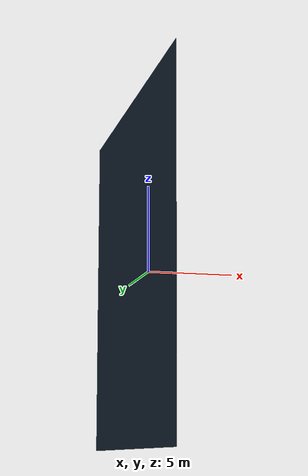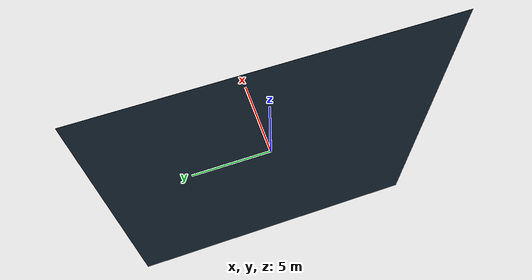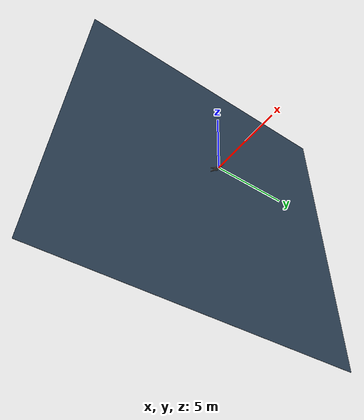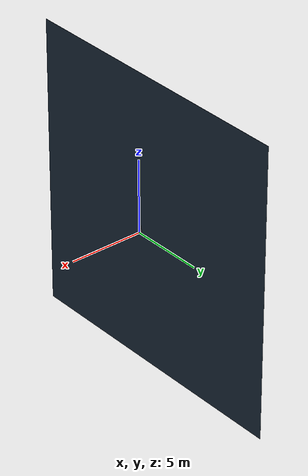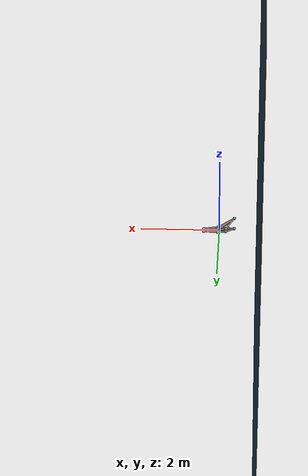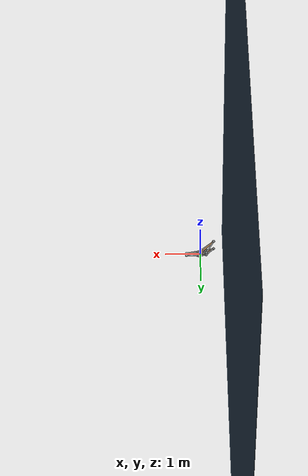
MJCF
<mujoco model="dbar"> <include file="./common/visual.xml"/>  <include file="./common/skybox.xml"/> <include file="./common/materials.xml"/>

    <!-- C:\Users\Vishala\Documents\MS_THO\PhD_Fall_2019\Study\RL\Project\common -->

    <option timestep="0.002" iterations="50" solver="PGS" tolerance="1e-10" gravity = "0 0 0" viscosity="0"/>
    <size njmax="100" nconmax="20" nstack="4000"/>

    <visual>
    </visual>

    <default>
        <motor ctrllimited="false" ctrlrange="-1 1"/>
		<tendon stiffness="0.9" damping=".001" range="0.1 0.8"/>
		<geom size="0.02" mass="1"/>
		<site size="0.04"/>
       <camera pos="0 0 10"/>
    </default>
    <asset><texture type="skybox" builtin="gradient" width="100" height="100" rgb1=".4 .6 .8" rgb2="0 0 0"/><texture name="texgeom" type="cube" builtin="flat" mark="cross" width="127" height="1278" rgb1="0.8 0.6 0.4" rgb2="0.8 0.6 0.4" markrgb="1 1 1" random="0.01"/><texture name="texplane" type="2d" builtin="checker" rgb1=".2 .3 .4" rgb2=".1 0.15 0.2" width="100" height="100"/><material name="MatPlane" reflectance="0.5" texture="texplane" texrepeat="1 1" texuniform="true"/><material name="geom" texture="texgeom" texuniform="true"/></asset>

    <worldbody>
        <geom name="floor" pos="-1 0 0" euler="0 90 0" size="10 10 0.125" type="plane" material="MatPlane" condim="3"/>
        <light directional="true" diffuse=".8 .8 .8" specular=".2 .2 .2" pos="0 0 5" dir="0 0 -1"/>
        <site name="s0" pos="0 0 0"/>
	<body>
      <geom name="bar1" type="capsule" fromto="-0.3800046 -0.3306 -0.15456 0.04222 0.0367 -0.0350" material="self"/>
	  <site name="b2" pos="-0.3800046 -0.3306 -0.15456"/>
      <site name="b4" pos="0.04222 0.0367 -0.0350"/>
	  <joint name="r1" type="free" pos="0 0 0" limited="false" damping="0" armature="0" stiffness="0.2"/>

	</body>
	<body>
	  <geom name="bar2" type="capsule" fromto="-0.3800046 -0.3306 0.15456  0.04222 0.0367 0.0350" material="self"/>
	  <site name="b8" pos="-0.3800046 -0.3306 0.15456"/>
	  <site name="b10" pos="0.04222 0.0367 0.0350"/>
	  <joint name="r2" type="free" pos="0 0 0" limited="false" damping="0" armature="0" stiffness="0.2"/>
	</body>
	<body>
	 <geom name="bar3" type="capsule" fromto="-0.1679 -0.00258 -0.04  0.3919 0.00603 -0.04" material="self"/>
	 <site name="b3" pos="-0.1679 -0.00258 -0.04"/>
	 <site name="b1" pos="0.3919 0.00603 -0.04"/>
	 <joint name="r3" type="free" pos="0 0 1" limited="false" damping="0" armature="0" stiffness="0.2"/>
    </body>
	<body>
     <geom name="bar4" type="capsule" fromto="-0.1679 -0.00258 0.04  0.3919 0.00603 0.04" material="self"/>
	 <site name="b9" pos="-0.1679 -0.00258 0.04"/>
	 <site name="b7" pos="0.3919 0.00603 0.04"/>
-	 <joint name="r4" type="free" pos="0 0 1" limited="false" damping="0" armature="0" stiffness="0"/>
    </body>
	<body>
    <geom name="bar5" type="capsule" fromto="0.020 -0.05 -0.065  0.020 -0.05 0.065" material="self"/>
	 <site name="b5" pos="0.020 -0.05 -0.065"/>
	 <site name="b6" pos="0.020 -0.05 0.065"/>
-	 <joint name="r5" type="free" pos="0 0 1" limited="false" damping="0" armature="0" stiffness="0"/>
    </body>
    </worldbody>
  <tendon>
        <spatial name="S1" width="0.02">
            <site site="b2"/>
            <site site="b3"/>
        </spatial>
  	<spatial name="S2" width="0.02">
            <site site="b3"/>
            <site site="b4"/>
        </spatial>
	<spatial name="S3" width="0.02">
            <site site="b4"/>
            <site site="b1"/>
        </spatial>
	<spatial name="S4" width="0.02">
            <site site="b1"/>
            <site site="b5"/>
        </spatial>
	<spatial name="S5" width="0.02">
            <site site="b2"/>
            <site site="b5"/>
        </spatial>
	<spatial name="S6" width="0.02">
            <site site="b3"/>
            <site site="b5"/>
        </spatial>
	<spatial name="S7" width="0.02">
            <site site="b4"/>
            <site site="b5"/>
        </spatial>
	<spatial name="S8" width="0.02">
            <site site="b1"/>
            <site site="b6"/>
        </spatial>
	<spatial name="S9" width="0.02">
            <site site="b2"/>
            <site site="b6"/>
        </spatial>
	<spatial name="S10" width="0.02">
            <site site="b3"/>
            <site site="b6"/>
        </spatial>
	<spatial name="S11" width="0.02">
            <site site="b4"/>
            <site site="b6"/>
        </spatial>
	<spatial name="S12" width="0.02">
            <site site="b8"/>
            <site site="b9"/>
        </spatial>
	<spatial name="S13" width="0.02">
            <site site="b9"/>
            <site site="b10"/>
        </spatial>
	<spatial name="S14" width="0.02">
            <site site="b10"/>
            <site site="b7"/>
        </spatial>
	<spatial name="S15" width="0.02">
            <site site="b5"/>
            <site site="b7"/>
        </spatial>
	<spatial name="S16" width="0.02">
            <site site="b5"/>
            <site site="b8"/>
        </spatial>
	<spatial name="S17" width="0.02">
            <site site="b5"/>
            <site site="b9"/>
        </spatial>
      <spatial name="S18" width="0.02">
            <site site="b5"/>
            <site site="b10"/>
	</spatial>
	<spatial name="S19" width="0.02">
            <site site="b6"/>
            <site site="b7"/>
        </spatial>
	<spatial name="S20" width="0.02">
            <site site="b6"/>
            <site site="b8"/>
        </spatial>
	<spatial name="S21" width="0.02">
            <site site="b6"/>
            <site site="b9"/>
        </spatial>
	<spatial name="S22" width="0.02">
            <site site="b6"/>
            <site site="b10"/>
        </spatial>
	<spatial name="S23" width="0.02">
            <site site="b4"/>
            <site site="b10"/>
        </spatial>
    </tendon>

   <actuator>
        <motor tendon="S1" gear="1"/>
        <motor tendon="S2" gear="1"/>
		<motor tendon="S3" gear="1"/>
        <motor tendon="S4" gear="1"/>
		<motor tendon="S5" gear="1"/>
        <motor tendon="S6" gear="1"/>
		<motor tendon="S7" gear="1"/>
        <motor tendon="S8" gear="1"/>
		<motor tendon="S9" gear="1"/>
        <motor tendon="S10" gear="1"/>
		<motor tendon="S11" gear="1"/>
        <motor tendon="S12" gear="1"/>
	    <motor tendon="S13" gear="1"/>
        <motor tendon="S14" gear="1"/>
		<motor tendon="S15" gear="1"/>
        <motor tendon="S16" gear="1"/>
		<motor tendon="S17" gear="1"/>
		<motor tendon="S18" gear="1"/>
        <motor tendon="S19" gear="1"/>
		<motor tendon="S20" gear="1"/>
        <motor tendon="S21" gear="1"/>
	    <motor tendon="S22" gear="1"/>
        <motor tendon="S23" gear="1"/>
   </actuator>

	<sensor>
		<framelinvel objtype="site" objname="b1"/>
		<framelinvel objtype="site" objname="b2"/>
		<framelinvel objtype="site" objname="b3"/>
		<framelinvel objtype="site" objname="b4"/>
		<framelinvel objtype="site" objname="b5"/>
		<framelinvel objtype="site" objname="b6"/>
        <framelinvel objtype="site" objname="b7"/>
		<framelinvel objtype="site" objname="b8"/>
		<framelinvel objtype="site" objname="b9"/>
		<framelinvel objtype="site" objname="b10"/>
	</sensor>
</mujoco>

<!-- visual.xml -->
<mujoco>
    <visual>
        <headlight ambient=".4 .4 .4" diffuse=".8 .8 .8" specular="0.1 0.1 0.1" />
        <map znear=".01" />
        <quality shadowsize="2048" />
    </visual>
</mujoco>

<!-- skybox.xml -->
<mujoco>
    <asset>
        <texture name="skybox" type="skybox" builtin="gradient" rgb1=".4 .6 .8" rgb2="0 0 0" width="800" height="800" mark="random" markrgb="1 1 1" />
    </asset>
</mujoco>

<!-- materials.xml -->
<!--
Common textures, colors and materials to be used throughout this suite. Some
materials such as xxx_highlight are activated on occurence of certain events,
for example receiving a positive reward.
-->
<mujoco>
    <asset>
        <texture name="grid" type="2d" builtin="checker" rgb1=".1 .2 .3" rgb2=".2 .3 .4" width="300" height="300" mark="edge" markrgb=".2 .3 .4" />
        <material name="grid" texture="grid" texrepeat="1 1" texuniform="true" reflectance=".2" />
        <material name="self" rgba=".7 .5 .3 1" />
        <material name="self_default" rgba=".7 .5 .3 1" />
        <material name="self_highlight" rgba="0 .5 .3 1" />
        <material name="effector" rgba=".7 .4 .2 1" />
        <material name="effector_default" rgba=".7 .4 .2 1" />
        <material name="effector_highlight" rgba="0 .5 .3 1" />
        <material name="decoration" rgba=".3 .5 .7 1" />
        <material name="eye" rgba="0 .2 1 1" />
        <material name="target" rgba=".6 .3 .3 1" />
        <material name="target_default" rgba=".6 .3 .3 1" />
        <material name="target_highlight" rgba=".6 .3 .3 .4" />
    </asset>
</mujoco>
